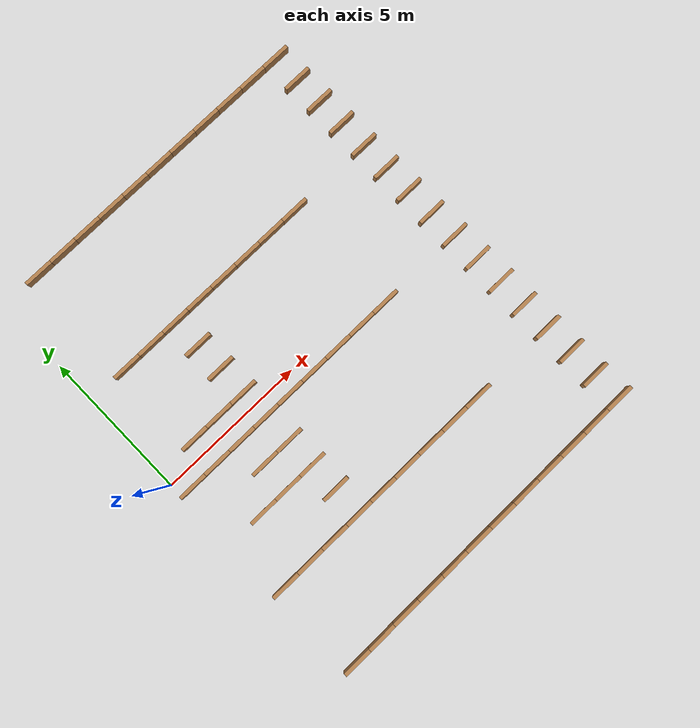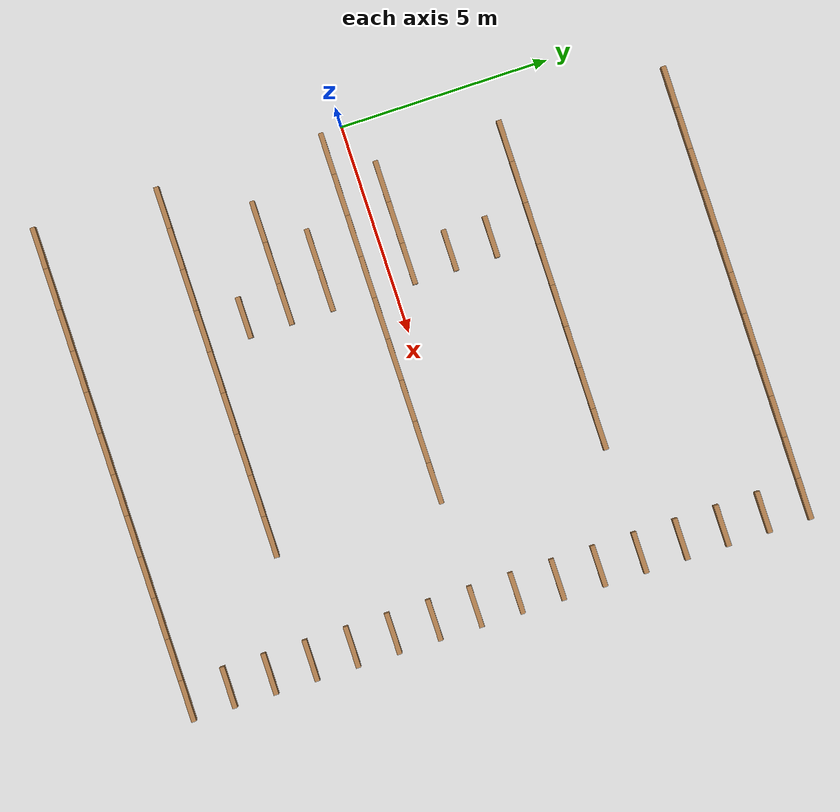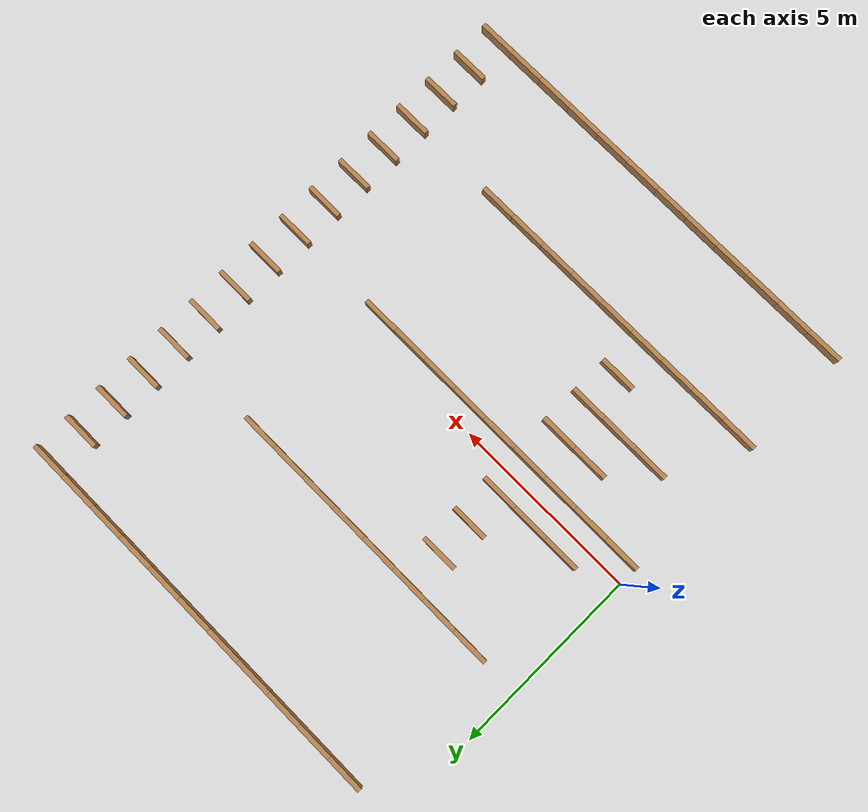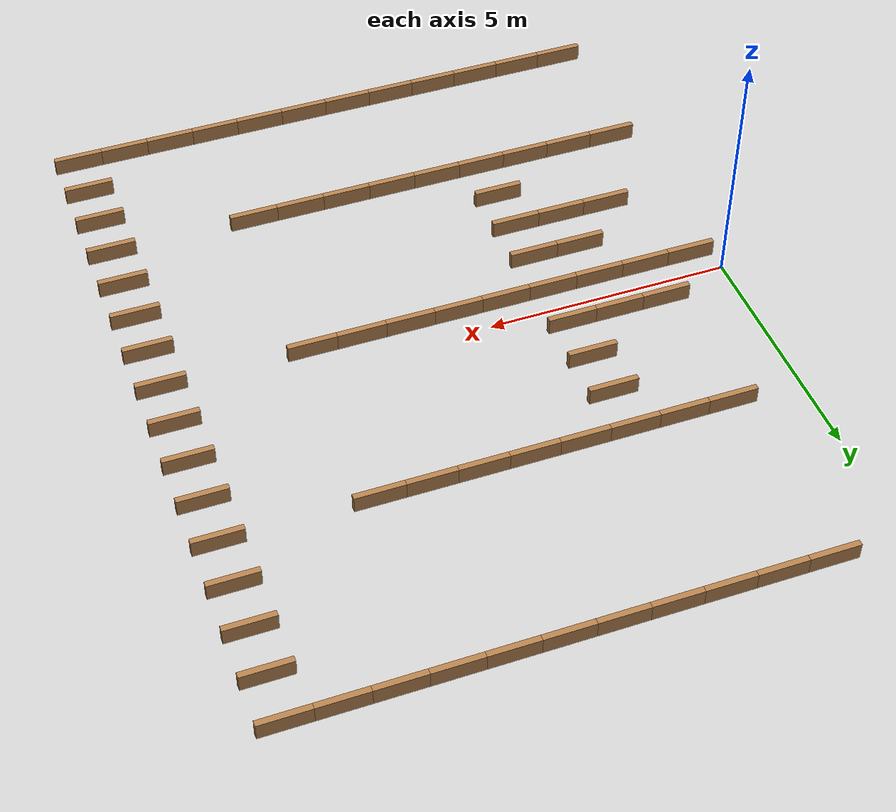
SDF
<sdf version="1.7">
 <world name="default">
  <include><uri>model://sun</uri></include>
  <model name="wall_r0_c13">
   <pose>1.5 7.5 0.175 0 0 0</pose>
   <static>true</static>
   <link name="link">
    <collision name="col"><geometry><box><size>1.0 0.12 0.35</size></box></geometry></collision>
    <visual name="vis">
     <geometry><box><size>1.0 0.12 0.35</size></box></geometry>
     <material>
      <ambient>0.3 0.2 0.1 1</ambient>
      <diffuse>0.7 0.5 0.3 1</diffuse>
      <specular>0.1 0.1 0.1 1</specular>
     </material>
    </visual>
   </link>
  </model>
  <model name="wall_r0_c14">
   <pose>2.5 7.5 0.175 0 0 0</pose>
   <static>true</static>
   <link name="link">
    <collision name="col"><geometry><box><size>1.0 0.12 0.35</size></box></geometry></collision>
    <visual name="vis">
     <geometry><box><size>1.0 0.12 0.35</size></box></geometry>
     <material>
      <ambient>0.3 0.2 0.1 1</ambient>
      <diffuse>0.7 0.5 0.3 1</diffuse>
      <specular>0.1 0.1 0.1 1</specular>
     </material>
    </visual>
   </link>
  </model>
  <model name="wall_r0_c15">
   <pose>3.5 7.5 0.175 0 0 0</pose>
   <static>true</static>
   <link name="link">
    <collision name="col"><geometry><box><size>1.0 0.12 0.35</size></box></geometry></collision>
    <visual name="vis">
     <geometry><box><size>1.0 0.12 0.35</size></box></geometry>
     <material>
      <ambient>0.3 0.2 0.1 1</ambient>
      <diffuse>0.7 0.5 0.3 1</diffuse>
      <specular>0.1 0.1 0.1 1</specular>
     </material>
    </visual>
   </link>
  </model>
  <model name="wall_r0_c16">
   <pose>4.5 7.5 0.175 0 0 0</pose>
   <static>true</static>
   <link name="link">
    <collision name="col"><geometry><box><size>1.0 0.12 0.35</size></box></geometry></collision>
    <visual name="vis">
     <geometry><box><size>1.0 0.12 0.35</size></box></geometry>
     <material>
      <ambient>0.3 0.2 0.1 1</ambient>
      <diffuse>0.7 0.5 0.3 1</diffuse>
      <specular>0.1 0.1 0.1 1</specular>
     </material>
    </visual>
   </link>
  </model>
  <model name="wall_r0_c17">
   <pose>5.5 7.5 0.175 0 0 0</pose>
   <static>true</static>
   <link name="link">
    <collision name="col"><geometry><box><size>1.0 0.12 0.35</size></box></geometry></collision>
    <visual name="vis">
     <geometry><box><size>1.0 0.12 0.35</size></box></geometry>
     <material>
      <ambient>0.3 0.2 0.1 1</ambient>
      <diffuse>0.7 0.5 0.3 1</diffuse>
      <specular>0.1 0.1 0.1 1</specular>
     </material>
    </visual>
   </link>
  </model>
  <model name="wall_r0_c18">
   <pose>6.5 7.5 0.175 0 0 0</pose>
   <static>true</static>
   <link name="link">
    <collision name="col"><geometry><box><size>1.0 0.12 0.35</size></box></geometry></collision>
    <visual name="vis">
     <geometry><box><size>1.0 0.12 0.35</size></box></geometry>
     <material>
      <ambient>0.3 0.2 0.1 1</ambient>
      <diffuse>0.7 0.5 0.3 1</diffuse>
      <specular>0.1 0.1 0.1 1</specular>
     </material>
    </visual>
   </link>
  </model>
  <model name="wall_r0_c19">
   <pose>7.5 7.5 0.175 0 0 0</pose>
   <static>true</static>
   <link name="link">
    <collision name="col"><geometry><box><size>1.0 0.12 0.35</size></box></geometry></collision>
    <visual name="vis">
     <geometry><box><size>1.0 0.12 0.35</size></box></geometry>
     <material>
      <ambient>0.3 0.2 0.1 1</ambient>
      <diffuse>0.7 0.5 0.3 1</diffuse>
      <specular>0.1 0.1 0.1 1</specular>
     </material>
    </visual>
   </link>
  </model>
  <model name="wall_r0_c20">
   <pose>8.5 7.5 0.175 0 0 0</pose>
   <static>true</static>
   <link name="link">
    <collision name="col"><geometry><box><size>1.0 0.12 0.35</size></box></geometry></collision>
    <visual name="vis">
     <geometry><box><size>1.0 0.12 0.35</size></box></geometry>
     <material>
      <ambient>0.3 0.2 0.1 1</ambient>
      <diffuse>0.7 0.5 0.3 1</diffuse>
      <specular>0.1 0.1 0.1 1</specular>
     </material>
    </visual>
   </link>
  </model>
  <model name="wall_r0_c21">
   <pose>9.5 7.5 0.175 0 0 0</pose>
   <static>true</static>
   <link name="link">
    <collision name="col"><geometry><box><size>1.0 0.12 0.35</size></box></geometry></collision>
    <visual name="vis">
     <geometry><box><size>1.0 0.12 0.35</size></box></geometry>
     <material>
      <ambient>0.3 0.2 0.1 1</ambient>
      <diffuse>0.7 0.5 0.3 1</diffuse>
      <specular>0.1 0.1 0.1 1</specular>
     </material>
    </visual>
   </link>
  </model>
  <model name="wall_r0_c22">
   <pose>10.5 7.5 0.175 0 0 0</pose>
   <static>true</static>
   <link name="link">
    <collision name="col"><geometry><box><size>1.0 0.12 0.35</size></box></geometry></collision>
    <visual name="vis">
     <geometry><box><size>1.0 0.12 0.35</size></box></geometry>
     <material>
      <ambient>0.3 0.2 0.1 1</ambient>
      <diffuse>0.7 0.5 0.3 1</diffuse>
      <specular>0.1 0.1 0.1 1</specular>
     </material>
    </visual>
   </link>
  </model>
  <model name="wall_r0_c23">
   <pose>11.5 7.5 0.175 0 0 0</pose>
   <static>true</static>
   <link name="link">
    <collision name="col"><geometry><box><size>1.0 0.12 0.35</size></box></geometry></collision>
    <visual name="vis">
     <geometry><box><size>1.0 0.12 0.35</size></box></geometry>
     <material>
      <ambient>0.3 0.2 0.1 1</ambient>
      <diffuse>0.7 0.5 0.3 1</diffuse>
      <specular>0.1 0.1 0.1 1</specular>
     </material>
    </visual>
   </link>
  </model>
  <model name="wall_r1_c23">
   <pose>11.5 6.5 0.175 0 0 0</pose>
   <static>true</static>
   <link name="link">
    <collision name="col"><geometry><box><size>1.0 0.12 0.35</size></box></geometry></collision>
    <visual name="vis">
     <geometry><box><size>1.0 0.12 0.35</size></box></geometry>
     <material>
      <ambient>0.3 0.2 0.1 1</ambient>
      <diffuse>0.7 0.5 0.3 1</diffuse>
      <specular>0.1 0.1 0.1 1</specular>
     </material>
    </visual>
   </link>
  </model>
  <model name="wall_r2_c23">
   <pose>11.5 5.5 0.175 0 0 0</pose>
   <static>true</static>
   <link name="link">
    <collision name="col"><geometry><box><size>1.0 0.12 0.35</size></box></geometry></collision>
    <visual name="vis">
     <geometry><box><size>1.0 0.12 0.35</size></box></geometry>
     <material>
      <ambient>0.3 0.2 0.1 1</ambient>
      <diffuse>0.7 0.5 0.3 1</diffuse>
      <specular>0.1 0.1 0.1 1</specular>
     </material>
    </visual>
   </link>
  </model>
  <model name="wall_r3_c23">
   <pose>11.5 4.5 0.175 0 0 0</pose>
   <static>true</static>
   <link name="link">
    <collision name="col"><geometry><box><size>1.0 0.12 0.35</size></box></geometry></collision>
    <visual name="vis">
     <geometry><box><size>1.0 0.12 0.35</size></box></geometry>
     <material>
      <ambient>0.3 0.2 0.1 1</ambient>
      <diffuse>0.7 0.5 0.3 1</diffuse>
      <specular>0.1 0.1 0.1 1</specular>
     </material>
    </visual>
   </link>
  </model>
  <model name="wall_r4_c13">
   <pose>1.5 3.5 0.175 0 0 0</pose>
   <static>true</static>
   <link name="link">
    <collision name="col"><geometry><box><size>1.0 0.12 0.35</size></box></geometry></collision>
    <visual name="vis">
     <geometry><box><size>1.0 0.12 0.35</size></box></geometry>
     <material>
      <ambient>0.3 0.2 0.1 1</ambient>
      <diffuse>0.7 0.5 0.3 1</diffuse>
      <specular>0.1 0.1 0.1 1</specular>
     </material>
    </visual>
   </link>
  </model>
  <model name="wall_r4_c14">
   <pose>2.5 3.5 0.175 0 0 0</pose>
   <static>true</static>
   <link name="link">
    <collision name="col"><geometry><box><size>1.0 0.12 0.35</size></box></geometry></collision>
    <visual name="vis">
     <geometry><box><size>1.0 0.12 0.35</size></box></geometry>
     <material>
      <ambient>0.3 0.2 0.1 1</ambient>
      <diffuse>0.7 0.5 0.3 1</diffuse>
      <specular>0.1 0.1 0.1 1</specular>
     </material>
    </visual>
   </link>
  </model>
  <model name="wall_r4_c15">
   <pose>3.5 3.5 0.175 0 0 0</pose>
   <static>true</static>
   <link name="link">
    <collision name="col"><geometry><box><size>1.0 0.12 0.35</size></box></geometry></collision>
    <visual name="vis">
     <geometry><box><size>1.0 0.12 0.35</size></box></geometry>
     <material>
      <ambient>0.3 0.2 0.1 1</ambient>
      <diffuse>0.7 0.5 0.3 1</diffuse>
      <specular>0.1 0.1 0.1 1</specular>
     </material>
    </visual>
   </link>
  </model>
  <model name="wall_r4_c16">
   <pose>4.5 3.5 0.175 0 0 0</pose>
   <static>true</static>
   <link name="link">
    <collision name="col"><geometry><box><size>1.0 0.12 0.35</size></box></geometry></collision>
    <visual name="vis">
     <geometry><box><size>1.0 0.12 0.35</size></box></geometry>
     <material>
      <ambient>0.3 0.2 0.1 1</ambient>
      <diffuse>0.7 0.5 0.3 1</diffuse>
      <specular>0.1 0.1 0.1 1</specular>
     </material>
    </visual>
   </link>
  </model>
  <model name="wall_r4_c17">
   <pose>5.5 3.5 0.175 0 0 0</pose>
   <static>true</static>
   <link name="link">
    <collision name="col"><geometry><box><size>1.0 0.12 0.35</size></box></geometry></collision>
    <visual name="vis">
     <geometry><box><size>1.0 0.12 0.35</size></box></geometry>
     <material>
      <ambient>0.3 0.2 0.1 1</ambient>
      <diffuse>0.7 0.5 0.3 1</diffuse>
      <specular>0.1 0.1 0.1 1</specular>
     </material>
    </visual>
   </link>
  </model>
  <model name="wall_r4_c18">
   <pose>6.5 3.5 0.175 0 0 0</pose>
   <static>true</static>
   <link name="link">
    <collision name="col"><geometry><box><size>1.0 0.12 0.35</size></box></geometry></collision>
    <visual name="vis">
     <geometry><box><size>1.0 0.12 0.35</size></box></geometry>
     <material>
      <ambient>0.3 0.2 0.1 1</ambient>
      <diffuse>0.7 0.5 0.3 1</diffuse>
      <specular>0.1 0.1 0.1 1</specular>
     </material>
    </visual>
   </link>
  </model>
  <model name="wall_r4_c19">
   <pose>7.5 3.5 0.175 0 0 0</pose>
   <static>true</static>
   <link name="link">
    <collision name="col"><geometry><box><size>1.0 0.12 0.35</size></box></geometry></collision>
    <visual name="vis">
     <geometry><box><size>1.0 0.12 0.35</size></box></geometry>
     <material>
      <ambient>0.3 0.2 0.1 1</ambient>
      <diffuse>0.7 0.5 0.3 1</diffuse>
      <specular>0.1 0.1 0.1 1</specular>
     </material>
    </visual>
   </link>
  </model>
  <model name="wall_r4_c20">
   <pose>8.5 3.5 0.175 0 0 0</pose>
   <static>true</static>
   <link name="link">
    <collision name="col"><geometry><box><size>1.0 0.12 0.35</size></box></geometry></collision>
    <visual name="vis">
     <geometry><box><size>1.0 0.12 0.35</size></box></geometry>
     <material>
      <ambient>0.3 0.2 0.1 1</ambient>
      <diffuse>0.7 0.5 0.3 1</diffuse>
      <specular>0.1 0.1 0.1 1</specular>
     </material>
    </visual>
   </link>
  </model>
  <model name="wall_r4_c23">
   <pose>11.5 3.5 0.175 0 0 0</pose>
   <static>true</static>
   <link name="link">
    <collision name="col"><geometry><box><size>1.0 0.12 0.35</size></box></geometry></collision>
    <visual name="vis">
     <geometry><box><size>1.0 0.12 0.35</size></box></geometry>
     <material>
      <ambient>0.3 0.2 0.1 1</ambient>
      <diffuse>0.7 0.5 0.3 1</diffuse>
      <specular>0.1 0.1 0.1 1</specular>
     </material>
    </visual>
   </link>
  </model>
  <model name="wall_r5_c15">
   <pose>3.5 2.5 0.175 0 0 0</pose>
   <static>true</static>
   <link name="link">
    <collision name="col"><geometry><box><size>1.0 0.12 0.35</size></box></geometry></collision>
    <visual name="vis">
     <geometry><box><size>1.0 0.12 0.35</size></box></geometry>
     <material>
      <ambient>0.3 0.2 0.1 1</ambient>
      <diffuse>0.7 0.5 0.3 1</diffuse>
      <specular>0.1 0.1 0.1 1</specular>
     </material>
    </visual>
   </link>
  </model>
  <model name="wall_r5_c23">
   <pose>11.5 2.5 0.175 0 0 0</pose>
   <static>true</static>
   <link name="link">
    <collision name="col"><geometry><box><size>1.0 0.12 0.35</size></box></geometry></collision>
    <visual name="vis">
     <geometry><box><size>1.0 0.12 0.35</size></box></geometry>
     <material>
      <ambient>0.3 0.2 0.1 1</ambient>
      <diffuse>0.7 0.5 0.3 1</diffuse>
      <specular>0.1 0.1 0.1 1</specular>
     </material>
    </visual>
   </link>
  </model>
  <model name="wall_r6_c15">
   <pose>3.5 1.5 0.175 0 0 0</pose>
   <static>true</static>
   <link name="link">
    <collision name="col"><geometry><box><size>1.0 0.12 0.35</size></box></geometry></collision>
    <visual name="vis">
     <geometry><box><size>1.0 0.12 0.35</size></box></geometry>
     <material>
      <ambient>0.3 0.2 0.1 1</ambient>
      <diffuse>0.7 0.5 0.3 1</diffuse>
      <specular>0.1 0.1 0.1 1</specular>
     </material>
    </visual>
   </link>
  </model>
  <model name="wall_r6_c23">
   <pose>11.5 1.5 0.175 0 0 0</pose>
   <static>true</static>
   <link name="link">
    <collision name="col"><geometry><box><size>1.0 0.12 0.35</size></box></geometry></collision>
    <visual name="vis">
     <geometry><box><size>1.0 0.12 0.35</size></box></geometry>
     <material>
      <ambient>0.3 0.2 0.1 1</ambient>
      <diffuse>0.7 0.5 0.3 1</diffuse>
      <specular>0.1 0.1 0.1 1</specular>
     </material>
    </visual>
   </link>
  </model>
  <model name="wall_r7_c13">
   <pose>1.5 0.5 0.175 0 0 0</pose>
   <static>true</static>
   <link name="link">
    <collision name="col"><geometry><box><size>1.0 0.12 0.35</size></box></geometry></collision>
    <visual name="vis">
     <geometry><box><size>1.0 0.12 0.35</size></box></geometry>
     <material>
      <ambient>0.3 0.2 0.1 1</ambient>
      <diffuse>0.7 0.5 0.3 1</diffuse>
      <specular>0.1 0.1 0.1 1</specular>
     </material>
    </visual>
   </link>
  </model>
  <model name="wall_r7_c14">
   <pose>2.5 0.5 0.175 0 0 0</pose>
   <static>true</static>
   <link name="link">
    <collision name="col"><geometry><box><size>1.0 0.12 0.35</size></box></geometry></collision>
    <visual name="vis">
     <geometry><box><size>1.0 0.12 0.35</size></box></geometry>
     <material>
      <ambient>0.3 0.2 0.1 1</ambient>
      <diffuse>0.7 0.5 0.3 1</diffuse>
      <specular>0.1 0.1 0.1 1</specular>
     </material>
    </visual>
   </link>
  </model>
  <model name="wall_r7_c15">
   <pose>3.5 0.5 0.175 0 0 0</pose>
   <static>true</static>
   <link name="link">
    <collision name="col"><geometry><box><size>1.0 0.12 0.35</size></box></geometry></collision>
    <visual name="vis">
     <geometry><box><size>1.0 0.12 0.35</size></box></geometry>
     <material>
      <ambient>0.3 0.2 0.1 1</ambient>
      <diffuse>0.7 0.5 0.3 1</diffuse>
      <specular>0.1 0.1 0.1 1</specular>
     </material>
    </visual>
   </link>
  </model>
  <model name="wall_r7_c23">
   <pose>11.5 0.5 0.175 0 0 0</pose>
   <static>true</static>
   <link name="link">
    <collision name="col"><geometry><box><size>1.0 0.12 0.35</size></box></geometry></collision>
    <visual name="vis">
     <geometry><box><size>1.0 0.12 0.35</size></box></geometry>
     <material>
      <ambient>0.3 0.2 0.1 1</ambient>
      <diffuse>0.7 0.5 0.3 1</diffuse>
      <specular>0.1 0.1 0.1 1</specular>
     </material>
    </visual>
   </link>
  </model>
  <model name="wall_r8_c12">
   <pose>0.5 -0.5 0.175 0 0 0</pose>
   <static>true</static>
   <link name="link">
    <collision name="col"><geometry><box><size>1.0 0.12 0.35</size></box></geometry></collision>
    <visual name="vis">
     <geometry><box><size>1.0 0.12 0.35</size></box></geometry>
     <material>
      <ambient>0.3 0.2 0.1 1</ambient>
      <diffuse>0.7 0.5 0.3 1</diffuse>
      <specular>0.1 0.1 0.1 1</specular>
     </material>
    </visual>
   </link>
  </model>
  <model name="wall_r8_c13">
   <pose>1.5 -0.5 0.175 0 0 0</pose>
   <static>true</static>
   <link name="link">
    <collision name="col"><geometry><box><size>1.0 0.12 0.35</size></box></geometry></collision>
    <visual name="vis">
     <geometry><box><size>1.0 0.12 0.35</size></box></geometry>
     <material>
      <ambient>0.3 0.2 0.1 1</ambient>
      <diffuse>0.7 0.5 0.3 1</diffuse>
      <specular>0.1 0.1 0.1 1</specular>
     </material>
    </visual>
   </link>
  </model>
  <model name="wall_r8_c14">
   <pose>2.5 -0.5 0.175 0 0 0</pose>
   <static>true</static>
   <link name="link">
    <collision name="col"><geometry><box><size>1.0 0.12 0.35</size></box></geometry></collision>
    <visual name="vis">
     <geometry><box><size>1.0 0.12 0.35</size></box></geometry>
     <material>
      <ambient>0.3 0.2 0.1 1</ambient>
      <diffuse>0.7 0.5 0.3 1</diffuse>
      <specular>0.1 0.1 0.1 1</specular>
     </material>
    </visual>
   </link>
  </model>
  <model name="wall_r8_c15">
   <pose>3.5 -0.5 0.175 0 0 0</pose>
   <static>true</static>
   <link name="link">
    <collision name="col"><geometry><box><size>1.0 0.12 0.35</size></box></geometry></collision>
    <visual name="vis">
     <geometry><box><size>1.0 0.12 0.35</size></box></geometry>
     <material>
      <ambient>0.3 0.2 0.1 1</ambient>
      <diffuse>0.7 0.5 0.3 1</diffuse>
      <specular>0.1 0.1 0.1 1</specular>
     </material>
    </visual>
   </link>
  </model>
  <model name="wall_r8_c16">
   <pose>4.5 -0.5 0.175 0 0 0</pose>
   <static>true</static>
   <link name="link">
    <collision name="col"><geometry><box><size>1.0 0.12 0.35</size></box></geometry></collision>
    <visual name="vis">
     <geometry><box><size>1.0 0.12 0.35</size></box></geometry>
     <material>
      <ambient>0.3 0.2 0.1 1</ambient>
      <diffuse>0.7 0.5 0.3 1</diffuse>
      <specular>0.1 0.1 0.1 1</specular>
     </material>
    </visual>
   </link>
  </model>
  <model name="wall_r8_c17">
   <pose>5.5 -0.5 0.175 0 0 0</pose>
   <static>true</static>
   <link name="link">
    <collision name="col"><geometry><box><size>1.0 0.12 0.35</size></box></geometry></collision>
    <visual name="vis">
     <geometry><box><size>1.0 0.12 0.35</size></box></geometry>
     <material>
      <ambient>0.3 0.2 0.1 1</ambient>
      <diffuse>0.7 0.5 0.3 1</diffuse>
      <specular>0.1 0.1 0.1 1</specular>
     </material>
    </visual>
   </link>
  </model>
  <model name="wall_r8_c18">
   <pose>6.5 -0.5 0.175 0 0 0</pose>
   <static>true</static>
   <link name="link">
    <collision name="col"><geometry><box><size>1.0 0.12 0.35</size></box></geometry></collision>
    <visual name="vis">
     <geometry><box><size>1.0 0.12 0.35</size></box></geometry>
     <material>
      <ambient>0.3 0.2 0.1 1</ambient>
      <diffuse>0.7 0.5 0.3 1</diffuse>
      <specular>0.1 0.1 0.1 1</specular>
     </material>
    </visual>
   </link>
  </model>
  <model name="wall_r8_c19">
   <pose>7.5 -0.5 0.175 0 0 0</pose>
   <static>true</static>
   <link name="link">
    <collision name="col"><geometry><box><size>1.0 0.12 0.35</size></box></geometry></collision>
    <visual name="vis">
     <geometry><box><size>1.0 0.12 0.35</size></box></geometry>
     <material>
      <ambient>0.3 0.2 0.1 1</ambient>
      <diffuse>0.7 0.5 0.3 1</diffuse>
      <specular>0.1 0.1 0.1 1</specular>
     </material>
    </visual>
   </link>
  </model>
  <model name="wall_r8_c20">
   <pose>8.5 -0.5 0.175 0 0 0</pose>
   <static>true</static>
   <link name="link">
    <collision name="col"><geometry><box><size>1.0 0.12 0.35</size></box></geometry></collision>
    <visual name="vis">
     <geometry><box><size>1.0 0.12 0.35</size></box></geometry>
     <material>
      <ambient>0.3 0.2 0.1 1</ambient>
      <diffuse>0.7 0.5 0.3 1</diffuse>
      <specular>0.1 0.1 0.1 1</specular>
     </material>
    </visual>
   </link>
  </model>
  <model name="wall_r8_c23">
   <pose>11.5 -0.5 0.175 0 0 0</pose>
   <static>true</static>
   <link name="link">
    <collision name="col"><geometry><box><size>1.0 0.12 0.35</size></box></geometry></collision>
    <visual name="vis">
     <geometry><box><size>1.0 0.12 0.35</size></box></geometry>
     <material>
      <ambient>0.3 0.2 0.1 1</ambient>
      <diffuse>0.7 0.5 0.3 1</diffuse>
      <specular>0.1 0.1 0.1 1</specular>
     </material>
    </visual>
   </link>
  </model>
  <model name="wall_r9_c14">
   <pose>2.5 -1.5 0.175 0 0 0</pose>
   <static>true</static>
   <link name="link">
    <collision name="col"><geometry><box><size>1.0 0.12 0.35</size></box></geometry></collision>
    <visual name="vis">
     <geometry><box><size>1.0 0.12 0.35</size></box></geometry>
     <material>
      <ambient>0.3 0.2 0.1 1</ambient>
      <diffuse>0.7 0.5 0.3 1</diffuse>
      <specular>0.1 0.1 0.1 1</specular>
     </material>
    </visual>
   </link>
  </model>
  <model name="wall_r9_c15">
   <pose>3.5 -1.5 0.175 0 0 0</pose>
   <static>true</static>
   <link name="link">
    <collision name="col"><geometry><box><size>1.0 0.12 0.35</size></box></geometry></collision>
    <visual name="vis">
     <geometry><box><size>1.0 0.12 0.35</size></box></geometry>
     <material>
      <ambient>0.3 0.2 0.1 1</ambient>
      <diffuse>0.7 0.5 0.3 1</diffuse>
      <specular>0.1 0.1 0.1 1</specular>
     </material>
    </visual>
   </link>
  </model>
  <model name="wall_r9_c23">
   <pose>11.5 -1.5 0.175 0 0 0</pose>
   <static>true</static>
   <link name="link">
    <collision name="col"><geometry><box><size>1.0 0.12 0.35</size></box></geometry></collision>
    <visual name="vis">
     <geometry><box><size>1.0 0.12 0.35</size></box></geometry>
     <material>
      <ambient>0.3 0.2 0.1 1</ambient>
      <diffuse>0.7 0.5 0.3 1</diffuse>
      <specular>0.1 0.1 0.1 1</specular>
     </material>
    </visual>
   </link>
  </model>
  <model name="wall_r10_c13">
   <pose>1.5 -2.5 0.175 0 0 0</pose>
   <static>true</static>
   <link name="link">
    <collision name="col"><geometry><box><size>1.0 0.12 0.35</size></box></geometry></collision>
    <visual name="vis">
     <geometry><box><size>1.0 0.12 0.35</size></box></geometry>
     <material>
      <ambient>0.3 0.2 0.1 1</ambient>
      <diffuse>0.7 0.5 0.3 1</diffuse>
      <specular>0.1 0.1 0.1 1</specular>
     </material>
    </visual>
   </link>
  </model>
  <model name="wall_r10_c14">
   <pose>2.5 -2.5 0.175 0 0 0</pose>
   <static>true</static>
   <link name="link">
    <collision name="col"><geometry><box><size>1.0 0.12 0.35</size></box></geometry></collision>
    <visual name="vis">
     <geometry><box><size>1.0 0.12 0.35</size></box></geometry>
     <material>
      <ambient>0.3 0.2 0.1 1</ambient>
      <diffuse>0.7 0.5 0.3 1</diffuse>
      <specular>0.1 0.1 0.1 1</specular>
     </material>
    </visual>
   </link>
  </model>
  <model name="wall_r10_c15">
   <pose>3.5 -2.5 0.175 0 0 0</pose>
   <static>true</static>
   <link name="link">
    <collision name="col"><geometry><box><size>1.0 0.12 0.35</size></box></geometry></collision>
    <visual name="vis">
     <geometry><box><size>1.0 0.12 0.35</size></box></geometry>
     <material>
      <ambient>0.3 0.2 0.1 1</ambient>
      <diffuse>0.7 0.5 0.3 1</diffuse>
      <specular>0.1 0.1 0.1 1</specular>
     </material>
    </visual>
   </link>
  </model>
  <model name="wall_r10_c23">
   <pose>11.5 -2.5 0.175 0 0 0</pose>
   <static>true</static>
   <link name="link">
    <collision name="col"><geometry><box><size>1.0 0.12 0.35</size></box></geometry></collision>
    <visual name="vis">
     <geometry><box><size>1.0 0.12 0.35</size></box></geometry>
     <material>
      <ambient>0.3 0.2 0.1 1</ambient>
      <diffuse>0.7 0.5 0.3 1</diffuse>
      <specular>0.1 0.1 0.1 1</specular>
     </material>
    </visual>
   </link>
  </model>
  <model name="wall_r11_c15">
   <pose>3.5 -3.5 0.175 0 0 0</pose>
   <static>true</static>
   <link name="link">
    <collision name="col"><geometry><box><size>1.0 0.12 0.35</size></box></geometry></collision>
    <visual name="vis">
     <geometry><box><size>1.0 0.12 0.35</size></box></geometry>
     <material>
      <ambient>0.3 0.2 0.1 1</ambient>
      <diffuse>0.7 0.5 0.3 1</diffuse>
      <specular>0.1 0.1 0.1 1</specular>
     </material>
    </visual>
   </link>
  </model>
  <model name="wall_r11_c23">
   <pose>11.5 -3.5 0.175 0 0 0</pose>
   <static>true</static>
   <link name="link">
    <collision name="col"><geometry><box><size>1.0 0.12 0.35</size></box></geometry></collision>
    <visual name="vis">
     <geometry><box><size>1.0 0.12 0.35</size></box></geometry>
     <material>
      <ambient>0.3 0.2 0.1 1</ambient>
      <diffuse>0.7 0.5 0.3 1</diffuse>
      <specular>0.1 0.1 0.1 1</specular>
     </material>
    </visual>
   </link>
  </model>
  <model name="wall_r12_c12">
   <pose>0.5 -4.5 0.175 0 0 0</pose>
   <static>true</static>
   <link name="link">
    <collision name="col"><geometry><box><size>1.0 0.12 0.35</size></box></geometry></collision>
    <visual name="vis">
     <geometry><box><size>1.0 0.12 0.35</size></box></geometry>
     <material>
      <ambient>0.3 0.2 0.1 1</ambient>
      <diffuse>0.7 0.5 0.3 1</diffuse>
      <specular>0.1 0.1 0.1 1</specular>
     </material>
    </visual>
   </link>
  </model>
  <model name="wall_r12_c13">
   <pose>1.5 -4.5 0.175 0 0 0</pose>
   <static>true</static>
   <link name="link">
    <collision name="col"><geometry><box><size>1.0 0.12 0.35</size></box></geometry></collision>
    <visual name="vis">
     <geometry><box><size>1.0 0.12 0.35</size></box></geometry>
     <material>
      <ambient>0.3 0.2 0.1 1</ambient>
      <diffuse>0.7 0.5 0.3 1</diffuse>
      <specular>0.1 0.1 0.1 1</specular>
     </material>
    </visual>
   </link>
  </model>
  <model name="wall_r12_c14">
   <pose>2.5 -4.5 0.175 0 0 0</pose>
   <static>true</static>
   <link name="link">
    <collision name="col"><geometry><box><size>1.0 0.12 0.35</size></box></geometry></collision>
    <visual name="vis">
     <geometry><box><size>1.0 0.12 0.35</size></box></geometry>
     <material>
      <ambient>0.3 0.2 0.1 1</ambient>
      <diffuse>0.7 0.5 0.3 1</diffuse>
      <specular>0.1 0.1 0.1 1</specular>
     </material>
    </visual>
   </link>
  </model>
  <model name="wall_r12_c15">
   <pose>3.5 -4.5 0.175 0 0 0</pose>
   <static>true</static>
   <link name="link">
    <collision name="col"><geometry><box><size>1.0 0.12 0.35</size></box></geometry></collision>
    <visual name="vis">
     <geometry><box><size>1.0 0.12 0.35</size></box></geometry>
     <material>
      <ambient>0.3 0.2 0.1 1</ambient>
      <diffuse>0.7 0.5 0.3 1</diffuse>
      <specular>0.1 0.1 0.1 1</specular>
     </material>
    </visual>
   </link>
  </model>
  <model name="wall_r12_c16">
   <pose>4.5 -4.5 0.175 0 0 0</pose>
   <static>true</static>
   <link name="link">
    <collision name="col"><geometry><box><size>1.0 0.12 0.35</size></box></geometry></collision>
    <visual name="vis">
     <geometry><box><size>1.0 0.12 0.35</size></box></geometry>
     <material>
      <ambient>0.3 0.2 0.1 1</ambient>
      <diffuse>0.7 0.5 0.3 1</diffuse>
      <specular>0.1 0.1 0.1 1</specular>
     </material>
    </visual>
   </link>
  </model>
  <model name="wall_r12_c17">
   <pose>5.5 -4.5 0.175 0 0 0</pose>
   <static>true</static>
   <link name="link">
    <collision name="col"><geometry><box><size>1.0 0.12 0.35</size></box></geometry></collision>
    <visual name="vis">
     <geometry><box><size>1.0 0.12 0.35</size></box></geometry>
     <material>
      <ambient>0.3 0.2 0.1 1</ambient>
      <diffuse>0.7 0.5 0.3 1</diffuse>
      <specular>0.1 0.1 0.1 1</specular>
     </material>
    </visual>
   </link>
  </model>
  <model name="wall_r12_c18">
   <pose>6.5 -4.5 0.175 0 0 0</pose>
   <static>true</static>
   <link name="link">
    <collision name="col"><geometry><box><size>1.0 0.12 0.35</size></box></geometry></collision>
    <visual name="vis">
     <geometry><box><size>1.0 0.12 0.35</size></box></geometry>
     <material>
      <ambient>0.3 0.2 0.1 1</ambient>
      <diffuse>0.7 0.5 0.3 1</diffuse>
      <specular>0.1 0.1 0.1 1</specular>
     </material>
    </visual>
   </link>
  </model>
  <model name="wall_r12_c19">
   <pose>7.5 -4.5 0.175 0 0 0</pose>
   <static>true</static>
   <link name="link">
    <collision name="col"><geometry><box><size>1.0 0.12 0.35</size></box></geometry></collision>
    <visual name="vis">
     <geometry><box><size>1.0 0.12 0.35</size></box></geometry>
     <material>
      <ambient>0.3 0.2 0.1 1</ambient>
      <diffuse>0.7 0.5 0.3 1</diffuse>
      <specular>0.1 0.1 0.1 1</specular>
     </material>
    </visual>
   </link>
  </model>
  <model name="wall_r12_c20">
   <pose>8.5 -4.5 0.175 0 0 0</pose>
   <static>true</static>
   <link name="link">
    <collision name="col"><geometry><box><size>1.0 0.12 0.35</size></box></geometry></collision>
    <visual name="vis">
     <geometry><box><size>1.0 0.12 0.35</size></box></geometry>
     <material>
      <ambient>0.3 0.2 0.1 1</ambient>
      <diffuse>0.7 0.5 0.3 1</diffuse>
      <specular>0.1 0.1 0.1 1</specular>
     </material>
    </visual>
   </link>
  </model>
  <model name="wall_r12_c23">
   <pose>11.5 -4.5 0.175 0 0 0</pose>
   <static>true</static>
   <link name="link">
    <collision name="col"><geometry><box><size>1.0 0.12 0.35</size></box></geometry></collision>
    <visual name="vis">
     <geometry><box><size>1.0 0.12 0.35</size></box></geometry>
     <material>
      <ambient>0.3 0.2 0.1 1</ambient>
      <diffuse>0.7 0.5 0.3 1</diffuse>
      <specular>0.1 0.1 0.1 1</specular>
     </material>
    </visual>
   </link>
  </model>
  <model name="wall_r13_c23">
   <pose>11.5 -5.5 0.175 0 0 0</pose>
   <static>true</static>
   <link name="link">
    <collision name="col"><geometry><box><size>1.0 0.12 0.35</size></box></geometry></collision>
    <visual name="vis">
     <geometry><box><size>1.0 0.12 0.35</size></box></geometry>
     <material>
      <ambient>0.3 0.2 0.1 1</ambient>
      <diffuse>0.7 0.5 0.3 1</diffuse>
      <specular>0.1 0.1 0.1 1</specular>
     </material>
    </visual>
   </link>
  </model>
  <model name="wall_r14_c23">
   <pose>11.5 -6.5 0.175 0 0 0</pose>
   <static>true</static>
   <link name="link">
    <collision name="col"><geometry><box><size>1.0 0.12 0.35</size></box></geometry></collision>
    <visual name="vis">
     <geometry><box><size>1.0 0.12 0.35</size></box></geometry>
     <material>
      <ambient>0.3 0.2 0.1 1</ambient>
      <diffuse>0.7 0.5 0.3 1</diffuse>
      <specular>0.1 0.1 0.1 1</specular>
     </material>
    </visual>
   </link>
  </model>
  <model name="wall_r15_c12">
   <pose>0.5 -7.5 0.175 0 0 0</pose>
   <static>true</static>
   <link name="link">
    <collision name="col"><geometry><box><size>1.0 0.12 0.35</size></box></geometry></collision>
    <visual name="vis">
     <geometry><box><size>1.0 0.12 0.35</size></box></geometry>
     <material>
      <ambient>0.3 0.2 0.1 1</ambient>
      <diffuse>0.7 0.5 0.3 1</diffuse>
      <specular>0.1 0.1 0.1 1</specular>
     </material>
    </visual>
   </link>
  </model>
  <model name="wall_r15_c13">
   <pose>1.5 -7.5 0.175 0 0 0</pose>
   <static>true</static>
   <link name="link">
    <collision name="col"><geometry><box><size>1.0 0.12 0.35</size></box></geometry></collision>
    <visual name="vis">
     <geometry><box><size>1.0 0.12 0.35</size></box></geometry>
     <material>
      <ambient>0.3 0.2 0.1 1</ambient>
      <diffuse>0.7 0.5 0.3 1</diffuse>
      <specular>0.1 0.1 0.1 1</specular>
     </material>
    </visual>
   </link>
  </model>
  <model name="wall_r15_c14">
   <pose>2.5 -7.5 0.175 0 0 0</pose>
   <static>true</static>
   <link name="link">
    <collision name="col"><geometry><box><size>1.0 0.12 0.35</size></box></geometry></collision>
    <visual name="vis">
     <geometry><box><size>1.0 0.12 0.35</size></box></geometry>
     <material>
      <ambient>0.3 0.2 0.1 1</ambient>
      <diffuse>0.7 0.5 0.3 1</diffuse>
      <specular>0.1 0.1 0.1 1</specular>
     </material>
    </visual>
   </link>
  </model>
  <model name="wall_r15_c15">
   <pose>3.5 -7.5 0.175 0 0 0</pose>
   <static>true</static>
   <link name="link">
    <collision name="col"><geometry><box><size>1.0 0.12 0.35</size></box></geometry></collision>
    <visual name="vis">
     <geometry><box><size>1.0 0.12 0.35</size></box></geometry>
     <material>
      <ambient>0.3 0.2 0.1 1</ambient>
      <diffuse>0.7 0.5 0.3 1</diffuse>
      <specular>0.1 0.1 0.1 1</specular>
     </material>
    </visual>
   </link>
  </model>
  <model name="wall_r15_c16">
   <pose>4.5 -7.5 0.175 0 0 0</pose>
   <static>true</static>
   <link name="link">
    <collision name="col"><geometry><box><size>1.0 0.12 0.35</size></box></geometry></collision>
    <visual name="vis">
     <geometry><box><size>1.0 0.12 0.35</size></box></geometry>
     <material>
      <ambient>0.3 0.2 0.1 1</ambient>
      <diffuse>0.7 0.5 0.3 1</diffuse>
      <specular>0.1 0.1 0.1 1</specular>
     </material>
    </visual>
   </link>
  </model>
  <model name="wall_r15_c17">
   <pose>5.5 -7.5 0.175 0 0 0</pose>
   <static>true</static>
   <link name="link">
    <collision name="col"><geometry><box><size>1.0 0.12 0.35</size></box></geometry></collision>
    <visual name="vis">
     <geometry><box><size>1.0 0.12 0.35</size></box></geometry>
     <material>
      <ambient>0.3 0.2 0.1 1</ambient>
      <diffuse>0.7 0.5 0.3 1</diffuse>
      <specular>0.1 0.1 0.1 1</specular>
     </material>
    </visual>
   </link>
  </model>
  <model name="wall_r15_c18">
   <pose>6.5 -7.5 0.175 0 0 0</pose>
   <static>true</static>
   <link name="link">
    <collision name="col"><geometry><box><size>1.0 0.12 0.35</size></box></geometry></collision>
    <visual name="vis">
     <geometry><box><size>1.0 0.12 0.35</size></box></geometry>
     <material>
      <ambient>0.3 0.2 0.1 1</ambient>
      <diffuse>0.7 0.5 0.3 1</diffuse>
      <specular>0.1 0.1 0.1 1</specular>
     </material>
    </visual>
   </link>
  </model>
  <model name="wall_r15_c19">
   <pose>7.5 -7.5 0.175 0 0 0</pose>
   <static>true</static>
   <link name="link">
    <collision name="col"><geometry><box><size>1.0 0.12 0.35</size></box></geometry></collision>
    <visual name="vis">
     <geometry><box><size>1.0 0.12 0.35</size></box></geometry>
     <material>
      <ambient>0.3 0.2 0.1 1</ambient>
      <diffuse>0.7 0.5 0.3 1</diffuse>
      <specular>0.1 0.1 0.1 1</specular>
     </material>
    </visual>
   </link>
  </model>
  <model name="wall_r15_c20">
   <pose>8.5 -7.5 0.175 0 0 0</pose>
   <static>true</static>
   <link name="link">
    <collision name="col"><geometry><box><size>1.0 0.12 0.35</size></box></geometry></collision>
    <visual name="vis">
     <geometry><box><size>1.0 0.12 0.35</size></box></geometry>
     <material>
      <ambient>0.3 0.2 0.1 1</ambient>
      <diffuse>0.7 0.5 0.3 1</diffuse>
      <specular>0.1 0.1 0.1 1</specular>
     </material>
    </visual>
   </link>
  </model>
  <model name="wall_r15_c21">
   <pose>9.5 -7.5 0.175 0 0 0</pose>
   <static>true</static>
   <link name="link">
    <collision name="col"><geometry><box><size>1.0 0.12 0.35</size></box></geometry></collision>
    <visual name="vis">
     <geometry><box><size>1.0 0.12 0.35</size></box></geometry>
     <material>
      <ambient>0.3 0.2 0.1 1</ambient>
      <diffuse>0.7 0.5 0.3 1</diffuse>
      <specular>0.1 0.1 0.1 1</specular>
     </material>
    </visual>
   </link>
  </model>
  <model name="wall_r15_c22">
   <pose>10.5 -7.5 0.175 0 0 0</pose>
   <static>true</static>
   <link name="link">
    <collision name="col"><geometry><box><size>1.0 0.12 0.35</size></box></geometry></collision>
    <visual name="vis">
     <geometry><box><size>1.0 0.12 0.35</size></box></geometry>
     <material>
      <ambient>0.3 0.2 0.1 1</ambient>
      <diffuse>0.7 0.5 0.3 1</diffuse>
      <specular>0.1 0.1 0.1 1</specular>
     </material>
    </visual>
   </link>
  </model>
  <model name="wall_r15_c23">
   <pose>11.5 -7.5 0.175 0 0 0</pose>
   <static>true</static>
   <link name="link">
    <collision name="col"><geometry><box><size>1.0 0.12 0.35</size></box></geometry></collision>
    <visual name="vis">
     <geometry><box><size>1.0 0.12 0.35</size></box></geometry>
     <material>
      <ambient>0.3 0.2 0.1 1</ambient>
      <diffuse>0.7 0.5 0.3 1</diffuse>
      <specular>0.1 0.1 0.1 1</specular>
     </material>
    </visual>
   </link>
  </model>
 </world>
</sdf>
